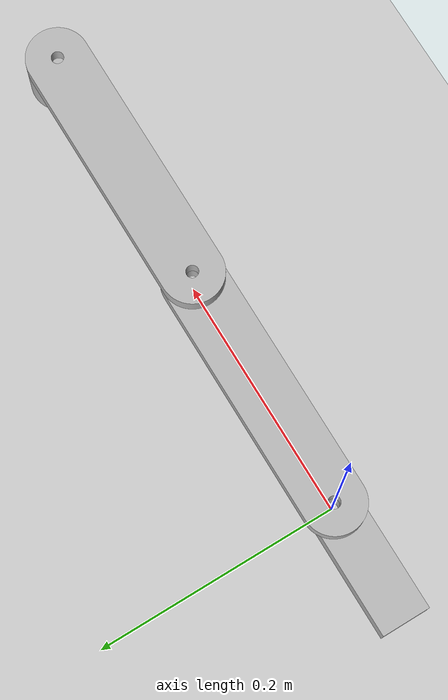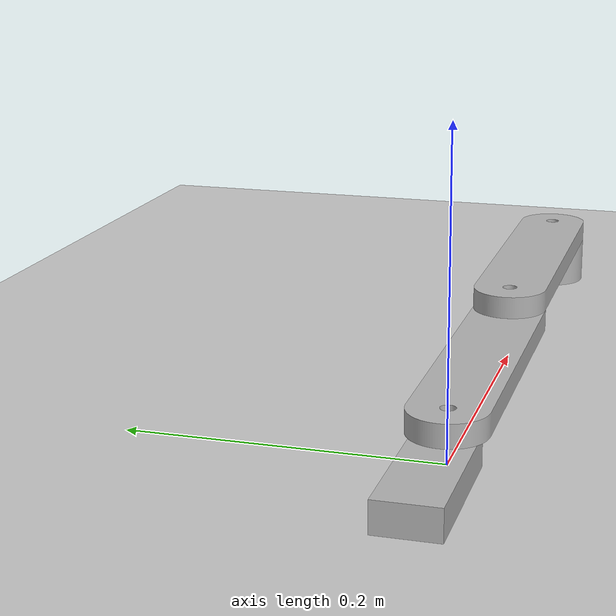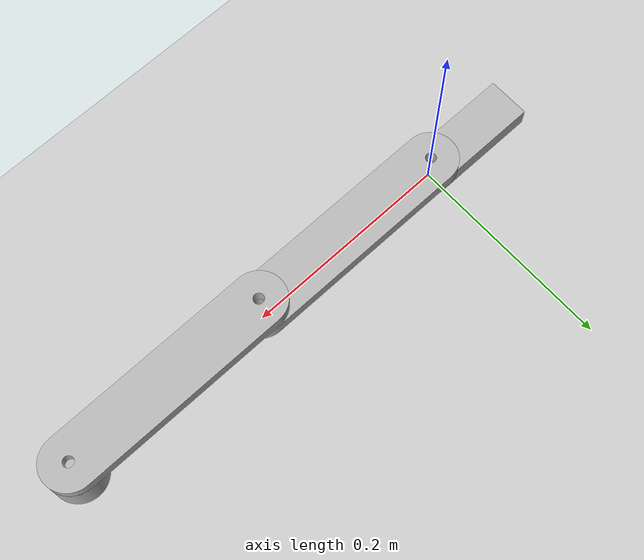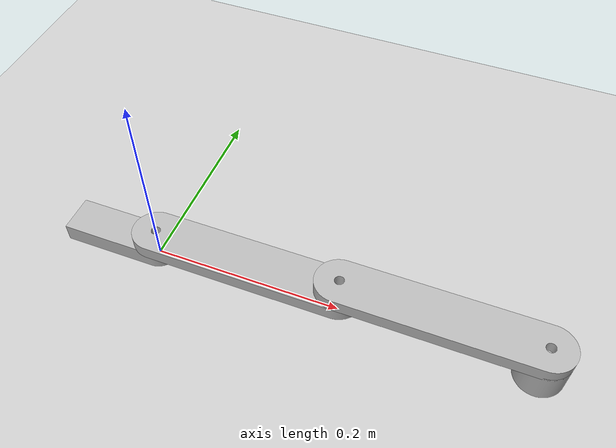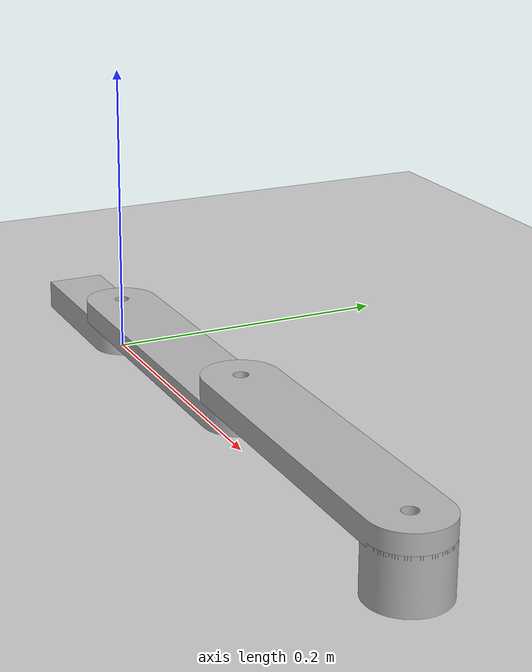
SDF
<?xml version="1.0"?>
<sdf version="1.5">
  <world name="default">
    <include>
      <uri>model://sun</uri>
    </include>

    <include>
      <uri>model://ground_plane</uri>
    </include>

    <include>
      <pose>0 0 0 0 0 3.14159265</pose>
      <uri>model://twoLinkArm</uri>
    </include>

    <gui fullscreen='0'>
      <!-- KEYPUBLISHER SEE: https://github.com/osrf/car_demo/issues/25 -->
      <plugin name='keyboard' filename='libKeyboardGUIPlugin.so'/>
      <camera name='user_camera'>
        <pose frame=''>0.961893 -0.002183 1.97459 2.4e-05 1.5698 1.56827</pose>
        <view_controller>orbit</view_controller>
        <projection_type>perspective</projection_type>
      </camera>
    </gui>
  </world>
</sdf>

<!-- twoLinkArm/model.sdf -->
<sdf version="1.5">

    <model name="twoLinkArm">
      <pose>0 0 0  0 0 0</pose>
      <static>false</static>

      <link name="endeffector">
       <pose>-0.4 0 0.02 0 0 0</pose>
       <inertial>
         <pose>0 0 0 0 0 0</pose>
         <mass>0.063912</mass>
         <inertia>
           <ixx>16510.540E-9</ixx>
           <ixy>0</ixy>
           <ixz>0</ixz>
           <iyy>16510.543E-9</iyy>
           <iyz>0</iyz>
           <izz>19972.429E-9</izz>
         </inertia>
       </inertial>

        <visual name="visual">
          <geometry>
            <mesh>
              <uri>model://twoLinkArm/EndEffector.stl</uri>
              <scale> 0.001 0.001 0.001 </scale>
            </mesh>
          </geometry>
        </visual>
        <collision name="visual">
          <geometry>
            <mesh>
              <uri>model://twoLinkArm/EndEffector.stl</uri>
              <scale> 0.001 0.001 0.001 </scale>
            </mesh>
          </geometry>
        </collision>
      </link>

      <link name="arm1">
       <pose>-0.3 0 0.0425 0 0 0</pose>
       <inertial>
         <pose>0 0 0 0 0 0</pose>
         <mass>0.478160</mass>
         <inertia>
           <ixx>105725.981E-9</ixx>
           <ixy>0</ixy>
           <ixz>0</ixz>
           <iyy>2271699.370E-9</iyy>
           <iyz>0</iyz>
           <izz>2359494.356E-9</izz>
         </inertia>
       </inertial>

        <visual name="visual">
          <geometry>
            <mesh>
              <uri>model://twoLinkArm/Arm1.stl</uri>
              <scale> 0.001 0.001 0.001 </scale>
            </mesh>
          </geometry>
        </visual>
        <collision name="visual">
          <geometry>
            <mesh>
              <uri>model://twoLinkArm/Arm1.stl</uri>
              <scale> 0.001 0.001 0.001 </scale>
            </mesh>
          </geometry>
        </collision>
      </link>

      <link name="arm2">
       <pose>-0.1 0 0.0275 0 0 0</pose>
       <inertial>
         <pose>0 0 0 0 0 0</pose>
         <mass>0.478160</mass>
         <inertia>
           <ixx>105725.981E-9</ixx>
           <ixy>0</ixy>
           <ixz>0</ixz>
           <iyy>2271699.370E-9</iyy>
           <iyz>0</iyz>
           <izz>2359494.356E-9</izz>
         </inertia>
       </inertial>

        <visual name="visual">
          <geometry>
            <mesh>
              <uri>model://twoLinkArm/Arm1.stl</uri>
              <scale> 0.001 0.001 0.001 </scale>
            </mesh>
          </geometry>
        </visual>
        <collision name="visual">
          <geometry>
            <mesh>
              <uri>model://twoLinkArm/Arm1.stl</uri>
              <scale> 0.001 0.001 0.001 </scale>
            </mesh>
          </geometry>
        </collision>
      </link>

      <link name="base">
       <pose>0 0 0.01 0 0 0</pose>
       <inertial>
         <pose>0.042786 0 0 0 0 0</pose>
         <mass>1.756215</mass>
         <inertia>
           <ixx>288470.771E-9</ixx>
           <ixy>0</ixy>
           <ixz>0</ixz>
           <iyy>5229270.771E-9</iyy>
           <iyz>0</iyz>
           <izz>5400660.569E-9</izz>
         </inertia>
       </inertial>

        <visual name="visual">
          <geometry>
            <mesh>
              <uri>model://twoLinkArm/Base.stl</uri>
              <scale> 0.001 0.001 0.001 </scale>
            </mesh>
          </geometry>
        </visual>
        <collision name="visual">
          <geometry>
            <mesh>
              <uri>model://twoLinkArm/Base.stl</uri>
              <scale> 0.001 0.001 0.001 </scale>
            </mesh>
          </geometry>
        </collision>
      </link>

    <joint type="revolute" name="fix_base">
      <pose>0 0 0 0 0 0</pose>
      <child>base</child>
      <parent>world</parent>
      <axis>
        <xyz>0 0 1</xyz>
        <limit>
          <lower>0</lower>
          <upper>0</upper>
        </limit>
      </axis>
    </joint>

    <joint type="revolute" name="base_arm2">
      <pose>0.1 0 0 0 0 0</pose>
      <child>arm2</child>
      <parent>base</parent>
      <axis>
        <xyz>0 0 1</xyz>
        <limit>
          <lower>-0.76</lower>
          <upper>0.76</upper>
        </limit>
        <dynamics>
          <friction>0.01</friction>
        </dynamics>
      </axis>
    </joint>

    <joint type="revolute" name="arm2_arm1">
      <pose>0.1 0 0 0 0 0</pose>
      <child>arm1</child>
      <parent>arm2</parent>
      <axis>
        <xyz>0 0 1</xyz>
        <limit>
          <lower>-1.57</lower>
          <upper>0</upper>
        </limit>
        <dynamics>
          <friction>0.01</friction>
        </dynamics>
      </axis>
    </joint>

    <joint type="revolute" name="arm1_endeffector">
      <pose>0 0 0 0 0 0</pose>
      <child>endeffector</child>
      <parent>arm1</parent>
      <axis>
        <xyz>0 0 1</xyz>
        <limit>
          <lower>0</lower>
          <upper>0</upper>
        </limit>
      </axis>
    </joint>

    <plugin name="twoLinkArmPlugin" filename="libtwoLinkArmPlugin.so">
      <shoulder>base_arm2</shoulder>
      <elbow>arm2_arm1</elbow>
    </plugin>

    </model>
</sdf>
